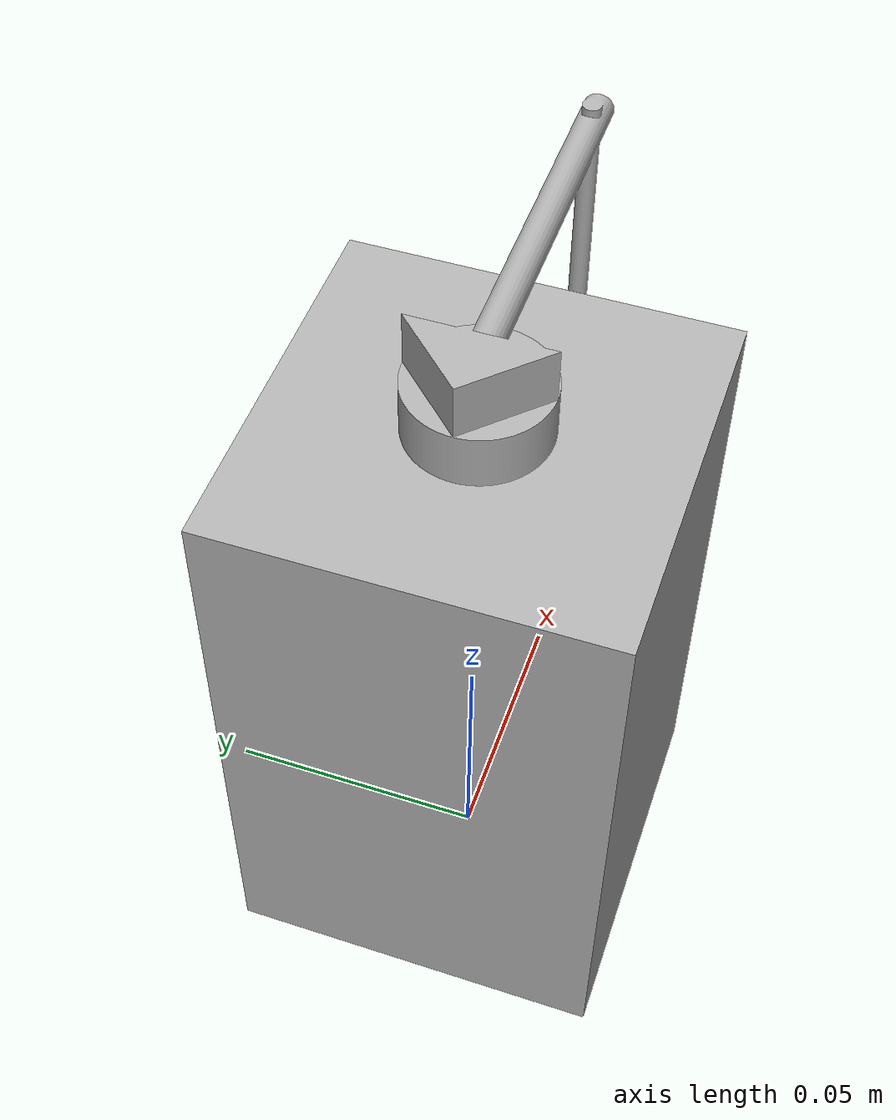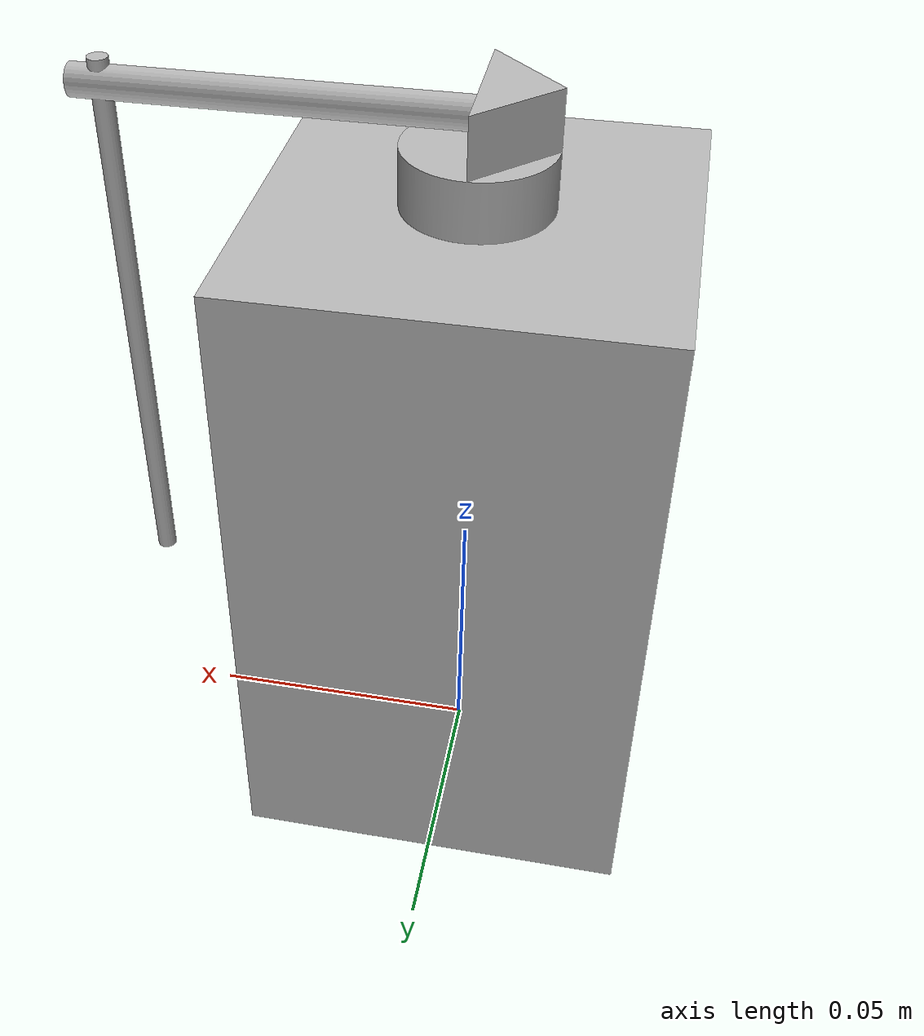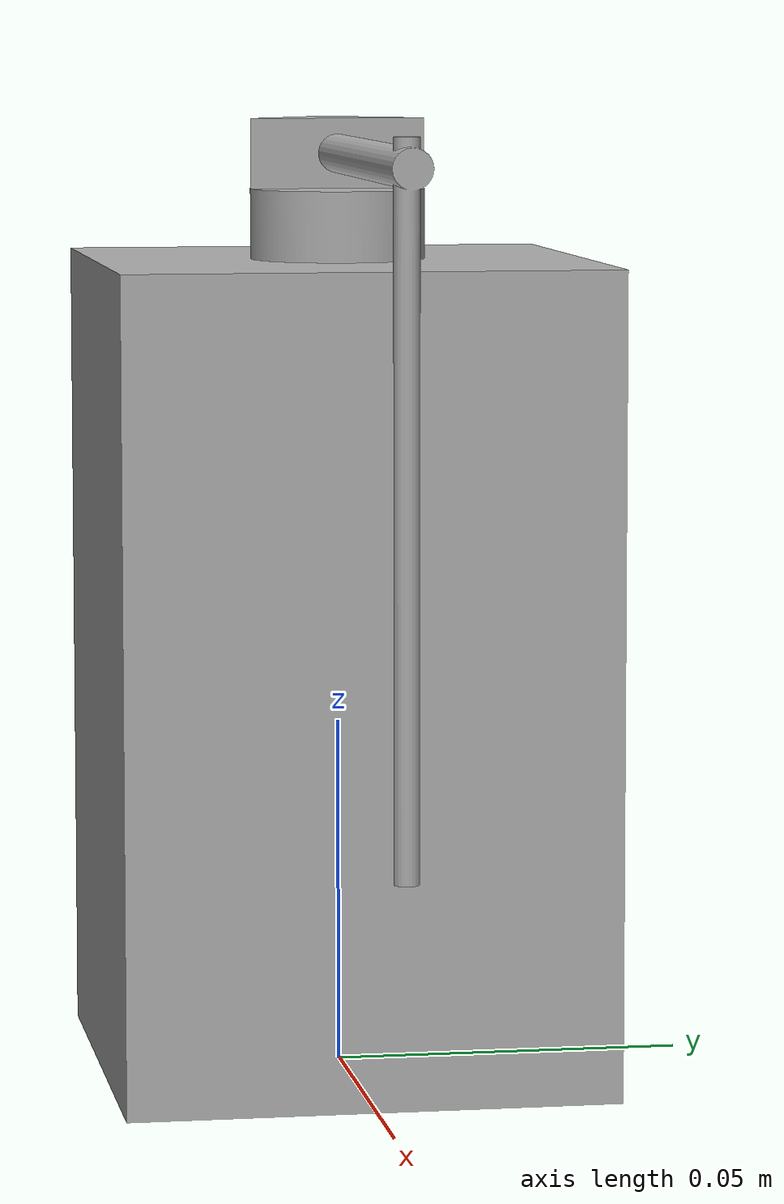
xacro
<?xml version="1.0" ?>
<robot name="qube_1" xmlns:xacro="http://www.ros.org/wiki/xacro">

<xacro:include filename="$(find qube_1_description)/urdf/materials.xacro" />
<xacro:include filename="$(find qube_1_description)/urdf/qube_1.ros2control" />
<xacro:include filename="$(find qube_1_description)/urdf/qube_1.gazebo" />
<link name="base_link">
  <inertial>
    <origin xyz="-7.932101009706335e-18 -7.932101009706335e-18 0.0585" rpy="0 0 0"/>
    <mass value="4.500404999999999"/>
    <inertia ixx="0.006972" iyy="0.006972" izz="0.003675" ixy="-0.0" iyz="-0.0" ixz="0.0"/>
  </inertial>
  <visual>
    <origin xyz="0 0 0" rpy="0 0 0"/>
    <geometry>
      <mesh filename="file://$(find qube_1_description)/meshes/base_link.stl" scale="0.001 0.001 0.001"/>
    </geometry>
    <material name="silver"/>
  </visual>
  <collision>
    <origin xyz="0 0 0" rpy="0 0 0"/>
    <geometry>
      <mesh filename="file://$(find qube_1_description)/meshes/base_link.stl" scale="0.001 0.001 0.001"/>
    </geometry>
  </collision>
</link>

<link name="rotor_1">
  <inertial>
    <origin xyz="-0.0010060541958551025 -5.4900057649598195e-18 0.00741453007005223" rpy="0 0 0"/>
    <mass value="0.05079922239168731"/>
    <inertia ixx="3e-06" iyy="3e-06" izz="4e-06" ixy="-0.0" iyz="0.0" ixz="0.0"/>
  </inertial>
  <visual>
    <origin xyz="0.0 0.0 -0.117" rpy="0 0 0"/>
    <geometry>
      <mesh filename="file://$(find qube_1_description)/meshes/rotor_1.stl" scale="0.001 0.001 0.001"/>
    </geometry>
    <material name="silver"/>
  </visual>
  <collision>
    <origin xyz="0.0 0.0 -0.117" rpy="0 0 0"/>
    <geometry>
      <mesh filename="file://$(find qube_1_description)/meshes/rotor_1.stl" scale="0.001 0.001 0.001"/>
    </geometry>
  </collision>
</link>

<link name="pendu_1">
  <inertial>
    <origin xyz="0.04264275286838389 -9.07509299137097e-14 -0.017698960694647797" rpy="0 0 0"/>
    <mass value="0.019206583219762752"/>
    <inertia ixx="1.6e-05" iyy="2.3e-05" izz="8e-06" ixy="-0.0" iyz="0.0" ixz="6e-06"/>
  </inertial>
  <visual>
    <origin xyz="-0.0 -0.0 -0.132" rpy="0 0 0"/>
    <geometry>
      <mesh filename="file://$(find qube_1_description)/meshes/pendu_1.stl" scale="0.001 0.001 0.001"/>
    </geometry>
    <material name="silver"/>
  </visual>
  <collision>
    <origin xyz="-0.0 -0.0 -0.132" rpy="0 0 0"/>
    <geometry>
      <mesh filename="file://$(find qube_1_description)/meshes/pendu_1.stl" scale="0.001 0.001 0.001"/>
    </geometry>
  </collision>
</link>

<joint name="Joint1" type="continuous">
  <origin xyz="0.0 0.0 0.117" rpy="0 0 0"/>
  <parent link="base_link"/>
  <child link="rotor_1"/>
  <axis xyz="0.0 0.0 1.0"/>
</joint>

<joint name="Joint2" type="continuous">
  <origin xyz="0.0 0.0 0.015" rpy="0 0 0"/>
  <parent link="rotor_1"/>
  <child link="pendu_1"/>
  <axis xyz="1.0 0.0 0.0"/>
</joint>

<ros2_control name="2DofControl" type="system">
    <hardware>
        <plugin>gz_ros2_control/GazeboSimSystem</plugin>
    </hardware>
    <joint name="Joint1">
        <command_interface name="position" />
        <command_interface name="velocity" />
        <state_interface name="position">
            <param name="initial_value">0.0</param>
        </state_interface>
        <state_interface name="velocity"/>
    </joint>
</ros2_control>

<gazebo>
    <plugin filename="gz_ros2_control-system" name="gz_ros2_control::GazeboSimROS2ControlPlugin">
        <parameters>$(find qube_1_description)/config/controller.yaml</parameters>
    </plugin>

</gazebo>

</robot>

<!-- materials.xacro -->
<robot name="qube_1" xmlns:xacro="http://www.ros.org/wiki/xacro" >

<material name="silver">
  <color rgba="0.700 0.700 0.700 1.000"/>
</material>

</robot>

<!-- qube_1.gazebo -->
<robot name="qube_1" xmlns:xacro="http://www.ros.org/wiki/xacro" >

<xacro:property name="body_color" value="Gazebo/Silver" />

<gazebo reference="base_link">
  <material>${body_color}</material>
  <mu1>0.2</mu1>
  <mu2>0.2</mu2>
  <self_collide>true</self_collide>
  <gravity>true</gravity>
</gazebo>

<gazebo reference="rotor_1">
  <material>${body_color}</material>
  <mu1>0.2</mu1>
  <mu2>0.2</mu2>
  <self_collide>true</self_collide>
</gazebo>

<gazebo reference="pendu_1">
  <material>${body_color}</material>
  <mu1>0.2</mu1>
  <mu2>0.2</mu2>
  <self_collide>true</self_collide>
</gazebo>

</robot>
